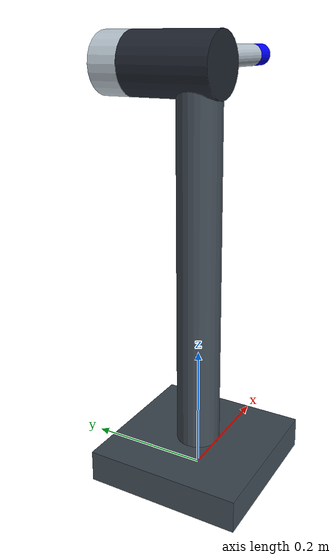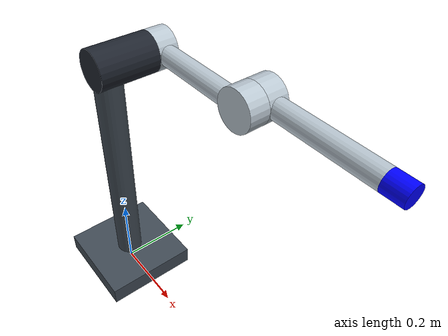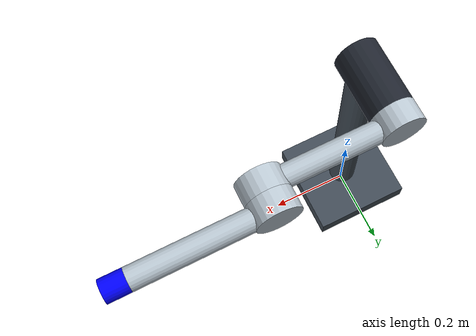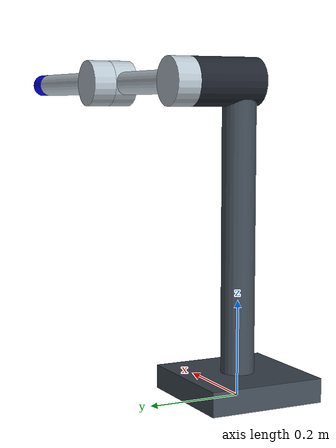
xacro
<?xml version="1.0"?>
<robot name="2r_robot_arm" xmlns:xacro="http://www.ros.org/wiki/xacro">
  <xacro:include filename="properties.xacro"/>
  <xacro:include filename="components.xacro"/>

  <!--Attach base_link to world -->
  <link name="world"/>
  <joint name="joint_world_base" type="fixed">
    <parent link="world"/>
    <child link="base_link"/>
    <origin xyz="0 0 0" rpy="0 0 0"/>
  </joint>

  <!-- Base platform -->
  <link name="base_link">
    <visual>
      <origin xyz="0 0 ${base_height / 2.0}"/>
      <geometry>
        <box size="${base_width} ${base_length} ${base_height}"/>
      </geometry>
      <material name="base_gray"/>
    </visual>
    <collision>
      <origin xyz="0 0 ${base_height / 2.0}"/>
      <geometry>
        <box size="${base_width} ${base_length} ${base_height}"/>
      </geometry>
    </collision>
    <xacro:box_inertia origin_xyz="0 0 ${base_height / 2.0}" mass="${base_mass}" base_width="${base_width}" base_length="${base_length}" base_height="${base_height}"/>
  </link>

  <link name="pedestal_link">
    <visual>
      <origin xyz="0 0 ${base_height + pedestal_height / 2.0}"/>
      <geometry>
        <cylinder length="${pedestal_height}" radius="${pedestal_radius}"/>
      </geometry>
      <material name="base_gray"/>
    </visual>
    <collision>
      <origin xyz="0 0 ${base_height + pedestal_height / 2.0}"/>
      <geometry>
        <cylinder length="${pedestal_height}" radius="${pedestal_radius}"/>
      </geometry>
    </collision>
    <xacro:z_aligned_cylinder_inertia origin_xyz="0 0 ${base_height + pedestal_height / 2.0}" mass="${pedestal_mass}" radius="${pedestal_radius}" length="${pedestal_height}"/>
  </link>
  <joint name="joint_base_pedestal" type="fixed">
    <parent link="base_link"/>
    <child link="pedestal_link"/>
    <origin xyz="0 0 0" rpy="0 0 0"/>
  </joint>

  <!-- Circular shoulder pivot housing is fixed to the pedestal. -->
  <link name="shoulder_link">
    <visual>
      <origin xyz="0 0 0" rpy="${pi / 2.0} 0 0"/>
      <geometry>
        <cylinder radius="${shoulder_radius}" length="${shoulder_length}"/>
      </geometry>
      <material name="joint_dark"/>
    </visual>
    <collision>
      <origin xyz="0 0 0" rpy="${pi / 2.0} 0 0"/>
      <geometry>
        <cylinder radius="${shoulder_radius}" length="${shoulder_length}"/>
      </geometry>
    </collision>
    <xacro:y_aligned_cylinder_inertia origin_xyz="0 0 0" mass="${shoulder_mass}" radius="${shoulder_radius}" length="${shoulder_length}"/>
  </link>
  <joint name="joint_pedestal_shoulder" type="fixed">
    <parent link="pedestal_link"/>
    <child link="shoulder_link"/>
    <origin xyz="0 ${shoulder_length / 4.0} ${base_height + pedestal_height}"/>
  </joint>

  <!-- Both rotation axes point along +Y, producing motion in the X-Z plane. -->
  <link name="arm_link_1">
    <xacro:arm_segment length="${arm_length}" mass="${arm_mass}"/>
    <!-- Elbow housing, located at the far end of link 1. -->
    <visual>
      <origin xyz="${arm_length} 0 0" rpy="${-pi / 2.0} 0 0"/>
      <geometry>
        <cylinder radius="${joint_radius}" length="${joint_length}"/>
      </geometry>
      <material name="arm_silver"/>
    </visual>
    <collision>
      <origin xyz="${arm_length} 0 0" rpy="${-pi / 2.0} 0 0"/>
      <geometry>
        <cylinder radius="${joint_radius}" length="${joint_length}"/>
      </geometry>
    </collision>
  </link>
  <joint name="joint_shoulder_arm1" type="continuous">
    <parent link="shoulder_link"/>
    <child link="arm_link_1"/>
    <origin xyz="0 ${(shoulder_length + joint_length) / 2.0} 0" rpy="0 0 0"/>
    <axis xyz="0 -1 0"/>
    <limit effort="${joint_effort}" velocity="${joint_velocity}"/>
    <dynamics damping="0.15" friction="0.02"/>
  </joint>

  <link name="arm_link_2">
    <xacro:arm_segment length="${arm_length}" mass="0.6"/>
  </link>
  <joint name="joint_arm1_arm2" type="continuous">
    <parent link="arm_link_1"/>
    <child link="arm_link_2"/>
    <origin xyz="${arm_length} ${joint_length} 0" rpy="0 0 0"/>
    <axis xyz="0 -1 0"/>
    <limit effort="${joint_effort}" velocity="${joint_velocity}"/>
    <dynamics damping="0.10" friction="0.02"/>
  </joint>

  <!-- End effector -->
  <link name="end_effector_link">
    <visual>
      <origin xyz="${end_effector_length / 2.0} 0 0" rpy="0 ${-pi / 2.0} 0"/>
      <geometry>
        <cylinder radius="${end_effector_radius}" length="${end_effector_length}"/>
      </geometry>
      <material name="end_effector_blue"/>
    </visual>
    <collision>
      <origin xyz="${end_effector_length / 2.0} 0 0" rpy="0 ${-pi / 2.0} 0"/>
      <geometry>
        <cylinder radius="${end_effector_radius}" length="${end_effector_length}"/>
      </geometry>
    </collision>
    <xacro:x_aligned_cylinder_inertia origin_xyz="${end_effector_length / 2.0} 0 0" mass="${end_effector_mass}" radius="${end_effector_radius}" length="${end_effector_length}"/>
  </link>
  <joint name="joint_arm2_end-effector" type="fixed">
    <parent link="arm_link_2"/>
    <child link="end_effector_link"/>
    <origin xyz="${arm_length} 0 0" rpy="0 0 0"/>
  </joint>
</robot>

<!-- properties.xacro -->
<robot xmlns:xacro="http://www.ros.org/wiki/xacro">
  <!-- All dimensions are in meters, masses in kilograms. -->
  <xacro:property name="base_width" value="0.25"/>
  <xacro:property name="base_length" value="0.25"/>
  <xacro:property name="base_height" value="0.05"/>
  <xacro:property name="base_mass" value="1.0"/>

  <xacro:property name="pedestal_height" value="0.6"/>
  <xacro:property name="pedestal_radius" value="0.035"/>
  <xacro:property name="pedestal_mass" value="2.0"/>

  <xacro:property name="shoulder_length" value="0.15"/>
  <xacro:property name="shoulder_radius" value="0.05"/>
  <xacro:property name="shoulder_mass" value="1.0"/>"

  <xacro:property name="arm_length" value="0.3"/>
  <xacro:property name="arm_radius" value="0.025"/>
  <xacro:property name="arm_mass" value="0.8"/>

  <xacro:property name="joint_radius" value="0.05"/>
  <xacro:property name="joint_length" value="0.05"/>

  <xacro:property name="end_effector_length" value="0.05"/>
  <xacro:property name="end_effector_radius" value="0.025"/>
  <xacro:property name="end_effector_mass" value="0.1"/>

  <xacro:property name="joint_effort" value="20.0"/>
  <xacro:property name="joint_velocity" value="1.5"/>

  <material name="base_gray"><color rgba="0.25 0.29 0.33 1"/></material>
  <material name="joint_dark"><color rgba="0.12 0.14 0.18 1"/></material>
  <material name="arm_silver"><color rgba="0.72 0.77 0.81 1"/></material>
  <material name="end_effector_blue"><color rgba="0 0 1 1"/></material>
</robot>

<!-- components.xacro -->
<robot xmlns:xacro="http://www.ros.org/wiki/xacro">
  <!-- Inertia tag. -->
  <xacro:macro name="box_inertia" params="origin_xyz mass base_width base_length base_height">
    <inertial>
      <origin xyz="${origin_xyz}" rpy="0 0 0"/>
      <mass value="${mass}"/>
      <inertia
        ixx="${mass * (base_length*base_length + base_height*base_height) / 12.0}"
        ixy="0"
        ixz="0"
        iyy="${mass * (base_width*base_width + base_height*base_height) / 12.0}"
        iyz="0"
        izz="${mass * (base_width*base_width + base_length*base_length) / 12.0}"/>
    </inertial>
  </xacro:macro>

  <xacro:macro name="z_aligned_cylinder_inertia" params="origin_xyz mass radius length">
    <inertial>
      <origin xyz="${origin_xyz}" rpy="0 0 0"/>
      <mass value="${mass}"/>
      <inertia
        ixx="${mass * (3*radius*radius + length*length) / 12.0}"
        ixy="0"
        ixz="0"
        iyy="${mass * (3*radius*radius + length*length) / 12.0}"
        iyz="0"
        izz="${mass * radius*radius / 2.0}"/>
    </inertial>
  </xacro:macro>

  <xacro:macro name="y_aligned_cylinder_inertia" params="origin_xyz mass radius length">
    <inertial>
      <origin xyz="${origin_xyz}" rpy="0 0 0"/>
      <mass value="${mass}"/>
      <inertia
        ixx="${mass * (3*radius*radius + length*length) / 12.0}"
        ixy="0"
        ixz="0"
        iyy="${mass * radius*radius / 2.0}"
        iyz="0"
        izz="${mass * (3*radius*radius + length*length) / 12.0}"/>
    </inertial>
  </xacro:macro>

  <xacro:macro name="x_aligned_cylinder_inertia" params="origin_xyz mass radius length">
    <inertial>
      <origin xyz="${origin_xyz}" rpy="0 0 0"/>
      <mass value="${mass}"/>
      <inertia
        ixx="${mass * radius*radius / 2.0}"
        ixy="0"
        ixz="0"
        iyy="${mass * (3*radius*radius + length*length) / 12.0}"
        iyz="0"
        izz="${mass * (3*radius*radius + length*length) / 12.0}"/>
    </inertial>
  </xacro:macro>

  <!-- Cylinder representing the body of the arm -->
  <xacro:macro name="arm_body" params="length radius material">
    <visual>
      <origin xyz="${length / 2.0} 0 0" rpy="0 ${-pi / 2.0} 0"/>
      <geometry>
        <cylinder radius="${radius}" length="${length}"/>
      </geometry>
      <material name="${material}"/>
    </visual>
    <collision>
      <origin xyz="${length / 2.0} 0 0" rpy="0 ${-pi / 2.0} 0"/>
      <geometry>
        <cylinder radius="${radius}" length="${length}"/>
      </geometry>
    </collision>
  </xacro:macro>

  <!-- Cylinder axis aligned with Y, centered on the current link frame. -->
  <xacro:macro name="arm_joint_disc" params="radius length material">
    <visual>
      <origin xyz="0 0 0" rpy="${-pi / 2.0} 0 0"/>
      <geometry>
        <cylinder radius="${radius}" length="${length}"/>
      </geometry>
      <material name="${material}"/>
    </visual>
    <collision>
      <origin xyz="0 0 0" rpy="${-pi / 2.0} 0 0"/>
      <geometry>
        <cylinder radius="${radius}" length="${length}"/>
      </geometry>
    </collision>
  </xacro:macro>

  <!-- Rotating arm segment and its circular mounting flange. -->
  <xacro:macro name="arm_segment" params="length mass">
    <xacro:arm_joint_disc radius="${joint_radius}" length="${joint_length}" material="arm_silver"/>
    <xacro:arm_body length="${length}" radius="${arm_radius}" material="arm_silver"/>
    <xacro:x_aligned_cylinder_inertia origin_xyz="${length / 2.0} 0 0" mass="${mass}" radius="${arm_radius}" length="${length}"/>
  </xacro:macro>
</robot>
